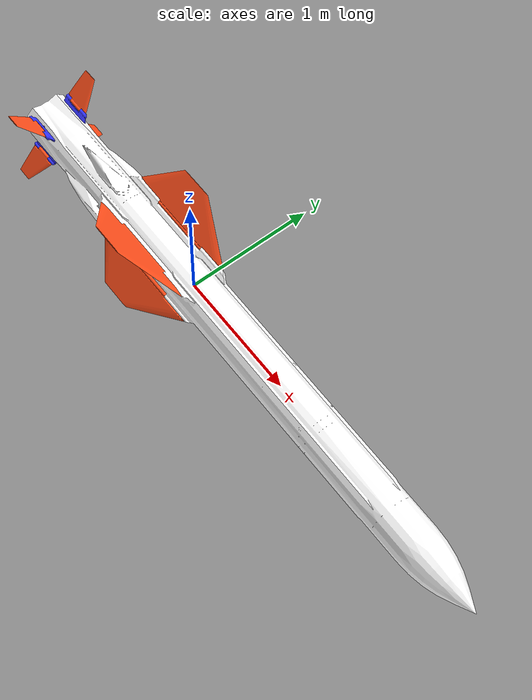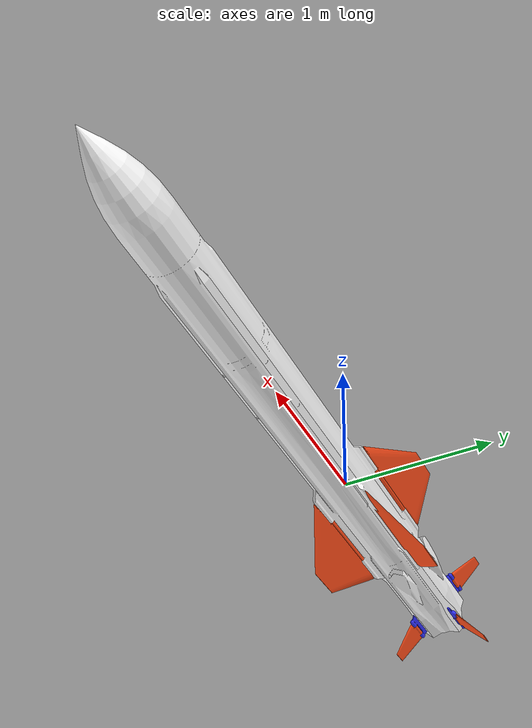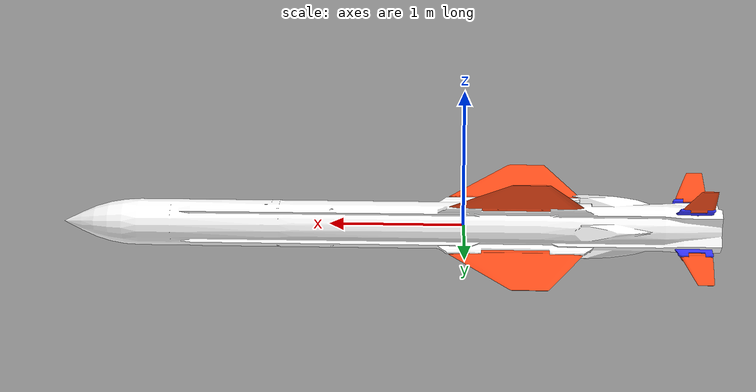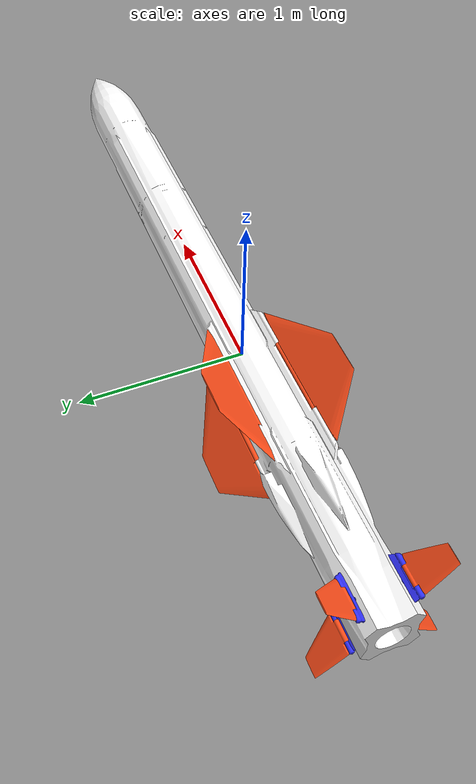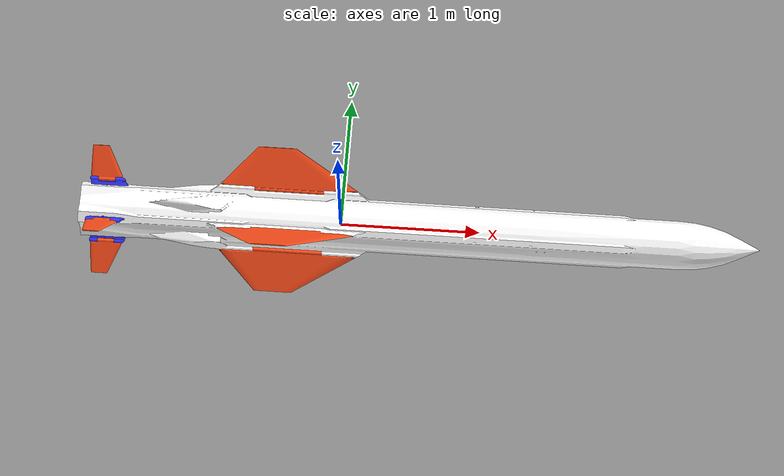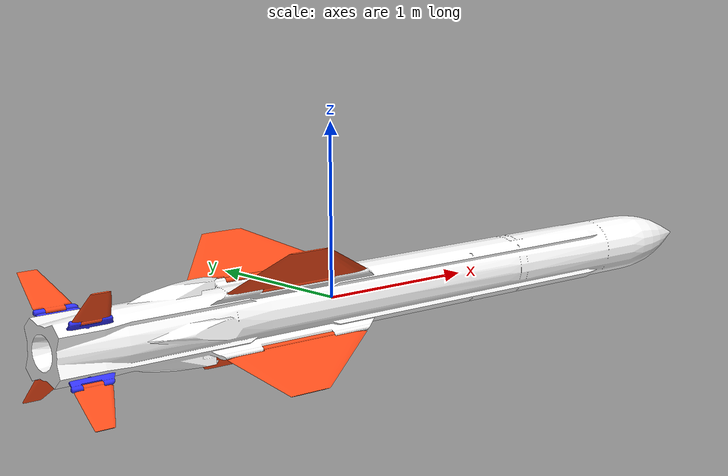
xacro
<?xml version="1.0" ?>
<robot name="model_missile" xmlns:xacro="http://www.ros.org/wiki/xacro">

<xacro:property name="use_booster" value="false"/>
<xacro:property name="use_holder" value="false"/>
<xacro:property name="foldable" value="false"/>
<xacro:property name="deflection" value="true"/>

<xacro:include filename="$(find model_missile_description)/urdf/materials.xacro" />
<xacro:include filename="$(find model_missile_description)/urdf/model_missile.trans" />
<xacro:include filename="$(find model_missile_description)/urdf/model_missile.gazebo" />

<link name="base_link">
  <inertial>
    <origin xyz="-4.5938008952361996e-12 -5.330786024108829e-16 -2.382079374378753e-16" rpy="0 0 0"/>
    <mass value="562.7679612503737"/>
    <inertia ixx="12.078708" iyy="817.09871" izz="817.09871" ixy="0.0" iyz="-0.0" ixz="0.0"/>
  </inertial>
  <visual>
    <origin xyz="0 0 0" rpy="0 0 0"/>
    <geometry>
      <mesh filename="package://model_missile_description/meshes/base_link.stl" scale="0.001 0.001 0.001"/>
    </geometry>
    <material name="white"/>
  </visual>
  <collision>
    <origin xyz="0 0 0" rpy="0 0 0"/>
    <geometry>
      <mesh filename="package://model_missile_description/meshes/base_link.stl" scale="0.001 0.001 0.001"/>
    </geometry>
  </collision>
</link>

<xacro:if value="${use_booster}">
  <link name="Booster_1">
    <inertial>
      <origin xyz="-0.5305587019886722 3.685572621648184e-09 -9.224211236366606e-10" rpy="0 0 0"/>
      <mass value="120.00001114591107"/>
      <inertia ixx="5.768641" iyy="16.618567" izz="16.618567" ixy="-0.0" iyz="-0.0" ixz="0.0"/>
    </inertial>
    <visual>
      <origin xyz="1.880856 -0.0 -0.0" rpy="0 0 0"/>
      <geometry>
        <mesh filename="package://model_missile_description/meshes/Booster_1.stl" scale="0.001 0.001 0.001"/>
      </geometry>
      <material name="grey"/>
    </visual>
    <collision>
      <origin xyz="1.880856 -0.0 -0.0" rpy="0 0 0"/>
      <geometry>
        <mesh filename="package://model_missile_description/meshes/Booster_1.stl" scale="0.001 0.001 0.001"/>
      </geometry>
    </collision>
  </link>
</xacro:if>

<link name="FinHolder_1">
  <inertial>
    <origin xyz="0.011989970177444853 0.024895470365400352 0.02489052657337168" rpy="0 0 0"/>
    <mass value="0.6999999481439694"/>
    <inertia ixx="0.00025" iyy="0.004649" izz="0.004649" ixy="3e-05" iyz="-9.8e-05" ixz="3e-05"/>
  </inertial>
  <visual>
    <origin xyz="1.700844 -0.127279 -0.127279" rpy="0 0 0"/>
    <geometry>
      <mesh filename="package://model_missile_description/meshes/FinHolder_1.stl" scale="0.001 0.001 0.001"/>
    </geometry>
    <material name="blue"/>
  </visual>
  <collision>
    <origin xyz="1.700844 -0.127279 -0.127279" rpy="0 0 0"/>
    <geometry>
      <mesh filename="package://model_missile_description/meshes/FinHolder_1.stl" scale="0.001 0.001 0.001"/>
    </geometry>
  </collision>
</link>

<link name="FinHolder_4">
  <inertial>
    <origin xyz="0.011989970177444853 -0.024890526573368127 0.0248954703654041" rpy="0 0 0"/>
    <mass value="0.6999999481439694"/>
    <inertia ixx="0.00025" iyy="0.004649" izz="0.004649" ixy="-3e-05" iyz="9.8e-05" ixz="3e-05"/>
  </inertial>
  <visual>
    <origin xyz="1.700844 0.127279 -0.127279" rpy="0 0 0"/>
    <geometry>
      <mesh filename="package://model_missile_description/meshes/FinHolder_4.stl" scale="0.001 0.001 0.001"/>
    </geometry>
    <material name="blue"/>
  </visual>
  <collision>
    <origin xyz="1.700844 0.127279 -0.127279" rpy="0 0 0"/>
    <geometry>
      <mesh filename="package://model_missile_description/meshes/FinHolder_4.stl" scale="0.001 0.001 0.001"/>
    </geometry>
  </collision>
</link>

<link name="FinHolder_3">
  <inertial>
    <origin xyz="0.011989970177444853 -0.024895470365400463 -0.02489052657336438" rpy="0 0 0"/>
    <mass value="0.6999999481439694"/>
    <inertia ixx="0.00025" iyy="0.004649" izz="0.004649" ixy="-3e-05" iyz="-9.8e-05" ixz="-3e-05"/>
  </inertial>
  <visual>
    <origin xyz="1.700844 0.127279 0.127279" rpy="0 0 0"/>
    <geometry>
      <mesh filename="package://model_missile_description/meshes/FinHolder_3.stl" scale="0.001 0.001 0.001"/>
    </geometry>
    <material name="blue"/>
  </visual>
  <collision>
    <origin xyz="1.700844 0.127279 0.127279" rpy="0 0 0"/>
    <geometry>
      <mesh filename="package://model_missile_description/meshes/FinHolder_3.stl" scale="0.001 0.001 0.001"/>
    </geometry>
  </collision>
</link>

<link name="FinHolder_2">
  <inertial>
    <origin xyz="0.011989970177444409 0.024890526573368155 -0.024895470365396688" rpy="0 0 0"/>
    <mass value="0.6999999481439694"/>
    <inertia ixx="0.00025" iyy="0.004649" izz="0.004649" ixy="3e-05" iyz="9.8e-05" ixz="-3e-05"/>
  </inertial>
  <visual>
    <origin xyz="1.700844 -0.127279 0.127279" rpy="0 0 0"/>
    <geometry>
      <mesh filename="package://model_missile_description/meshes/FinHolder_2.stl" scale="0.001 0.001 0.001"/>
    </geometry>
    <material name="blue"/>
  </visual>
  <collision>
    <origin xyz="1.700844 -0.127279 0.127279" rpy="0 0 0"/>
    <geometry>
      <mesh filename="package://model_missile_description/meshes/FinHolder_2.stl" scale="0.001 0.001 0.001"/>
    </geometry>
  </collision>
</link>

<link name="Wing1_1">
  <inertial>
    <origin xyz="-0.031208061901909834 0.07128204697290338 0.07128204710602434" rpy="0 0 0"/>
    <mass value="9.299979574219194"/>
    <inertia ixx="0.055746" iyy="0.41744" izz="0.41744" ixy="0.012327" iyz="-0.02758" ixz="0.012327"/>
  </inertial>
  <visual>
    <origin xyz="0.380856 -0.163355 -0.163355" rpy="0 0 0"/>
    <geometry>
      <mesh filename="package://model_missile_description/meshes/Wing1_1.stl" scale="0.001 0.001 0.001"/>
    </geometry>
    <material name="orange"/>
  </visual>
  <collision>
    <origin xyz="0.380856 -0.163355 -0.163355" rpy="0 0 0"/>
    <geometry>
      <mesh filename="package://model_missile_description/meshes/Wing1_1.stl" scale="0.001 0.001 0.001"/>
    </geometry>
  </collision>
</link>

<link name="Wing1_2">
  <inertial>
    <origin xyz="-0.031208061901910722 0.07057494032483622 -0.07057494019171545" rpy="0 0 0"/>
    <mass value="9.299979574219194"/>
    <inertia ixx="0.055746" iyy="0.41744" izz="0.41744" ixy="0.012327" iyz="0.02758" ixz="-0.012327"/>
  </inertial>
  <visual>
    <origin xyz="0.380856 -0.163355 0.163355" rpy="0 0 0"/>
    <geometry>
      <mesh filename="package://model_missile_description/meshes/Wing1_2.stl" scale="0.001 0.001 0.001"/>
    </geometry>
    <material name="orange"/>
  </visual>
  <collision>
    <origin xyz="0.380856 -0.163355 0.163355" rpy="0 0 0"/>
    <geometry>
      <mesh filename="package://model_missile_description/meshes/Wing1_2.stl" scale="0.001 0.001 0.001"/>
    </geometry>
  </collision>
</link>

<link name="Wing1_3">
  <inertial>
    <origin xyz="-0.031208061901910722 -0.07057494019171678 -0.0705749403248346" rpy="0 0 0"/>
    <mass value="9.299979574219194"/>
    <inertia ixx="0.055746" iyy="0.41744" izz="0.41744" ixy="-0.012327" iyz="-0.02758" ixz="-0.012327"/>
  </inertial>
  <visual>
    <origin xyz="0.380856 0.163355 0.163355" rpy="0 0 0"/>
    <geometry>
      <mesh filename="package://model_missile_description/meshes/Wing1_3.stl" scale="0.001 0.001 0.001"/>
    </geometry>
    <material name="orange"/>
  </visual>
  <collision>
    <origin xyz="0.380856 0.163355 0.163355" rpy="0 0 0"/>
    <geometry>
      <mesh filename="package://model_missile_description/meshes/Wing1_3.stl" scale="0.001 0.001 0.001"/>
    </geometry>
  </collision>
</link>

<link name="Wing1_4">
  <inertial>
    <origin xyz="-0.031208061901909945 -0.07057494032483608 0.07057494019171842" rpy="0 0 0"/>
    <mass value="9.299979574219194"/>
    <inertia ixx="0.055746" iyy="0.41744" izz="0.41744" ixy="-0.012327" iyz="0.02758" ixz="0.012327"/>
  </inertial>
  <visual>
    <origin xyz="0.380856 0.163355 -0.163355" rpy="0 0 0"/>
    <geometry>
      <mesh filename="package://model_missile_description/meshes/Wing1_4.stl" scale="0.001 0.001 0.001"/>
    </geometry>
    <material name="orange"/>
  </visual>
  <collision>
    <origin xyz="0.380856 0.163355 -0.163355" rpy="0 0 0"/>
    <geometry>
      <mesh filename="package://model_missile_description/meshes/Wing1_4.stl" scale="0.001 0.001 0.001"/>
    </geometry>
  </collision>
</link>

<link name="Fin_1">
  <inertial>
    <origin xyz="-0.014318251120852166 0.06139665026364291 0.061396650263642966" rpy="0 0 0"/>
    <mass value="1.500000007859579"/>
    <inertia ixx="0.006929" iyy="0.007262" izz="0.007262" ixy="0.000899" iyz="-0.003432" ixz="0.000899"/>
  </inertial>
  <visual>
    <origin xyz="1.700844 -0.16617 -0.16617" rpy="0 0 0"/>
    <geometry>
      <mesh filename="package://model_missile_description/meshes/Fin_1.stl" scale="0.001 0.001 0.001"/>
    </geometry>
    <material name="orange"/>
  </visual>
  <collision>
    <origin xyz="1.700844 -0.16617 -0.16617" rpy="0 0 0"/>
    <geometry>
      <mesh filename="package://model_missile_description/meshes/Fin_1.stl" scale="0.001 0.001 0.001"/>
    </geometry>
  </collision>
</link>

<link name="Fin_2">
  <inertial>
    <origin xyz="-0.01431825112085261 0.06139642160960024 -0.061396878917678394" rpy="0 0 0"/>
    <mass value="1.500000007859579"/>
    <inertia ixx="0.006929" iyy="0.007262" izz="0.007262" ixy="0.000899" iyz="0.003432" ixz="-0.000899"/>
  </inertial>
  <visual>
    <origin xyz="1.700844 -0.166158 0.166182" rpy="0 0 0"/>
    <geometry>
      <mesh filename="package://model_missile_description/meshes/Fin_2.stl" scale="0.001 0.001 0.001"/>
    </geometry>
    <material name="orange"/>
  </visual>
  <collision>
    <origin xyz="1.700844 -0.166158 0.166182" rpy="0 0 0"/>
    <geometry>
      <mesh filename="package://model_missile_description/meshes/Fin_2.stl" scale="0.001 0.001 0.001"/>
    </geometry>
  </collision>
</link>

<link name="Fin_3">
  <inertial>
    <origin xyz="-0.014318251120852166 -0.06139665026364283 -0.06139665026363558" rpy="0 0 0"/>
    <mass value="1.500000007859579"/>
    <inertia ixx="0.006929" iyy="0.007262" izz="0.007262" ixy="-0.000899" iyz="-0.003432" ixz="-0.000899"/>
  </inertial>
  <visual>
    <origin xyz="1.700844 0.16617 0.16617" rpy="0 0 0"/>
    <geometry>
      <mesh filename="package://model_missile_description/meshes/Fin_3.stl" scale="0.001 0.001 0.001"/>
    </geometry>
    <material name="orange"/>
  </visual>
  <collision>
    <origin xyz="1.700844 0.16617 0.16617" rpy="0 0 0"/>
    <geometry>
      <mesh filename="package://model_missile_description/meshes/Fin_3.stl" scale="0.001 0.001 0.001"/>
    </geometry>
  </collision>
</link>

<link name="Fin_4">
  <inertial>
    <origin xyz="-0.014318251120852166 -0.061396650263639274 0.06139665026364652" rpy="0 0 0"/>
    <mass value="1.500000007859579"/>
    <inertia ixx="0.006929" iyy="0.007262" izz="0.007262" ixy="-0.000899" iyz="0.003432" ixz="0.000899"/>
  </inertial>
  <visual>
    <origin xyz="1.700844 0.16617 -0.16617" rpy="0 0 0"/>
    <geometry>
      <mesh filename="package://model_missile_description/meshes/Fin_4.stl" scale="0.001 0.001 0.001"/>
    </geometry>
    <material name="orange"/>
  </visual>
  <collision>
    <origin xyz="1.700844 0.16617 -0.16617" rpy="0 0 0"/>
    <geometry>
      <mesh filename="package://model_missile_description/meshes/Fin_4.stl" scale="0.001 0.001 0.001"/>
    </geometry>
  </collision>
</link>

<xacro:if value="${use_holder}">
  <link name="Holder_1">
    <inertial>
      <origin xyz="-0.19999995584291042 0.025232520282130994 0.02523252028212361" rpy="0 0 0"/>
      <mass value="13.50000107858645"/>
      <inertia ixx="0.184494" iyy="0.864601" izz="0.864601" ixy="-0.0" iyz="0.079825" ixz="-0.0"/>
    </inertial>
    <visual>
      <origin xyz="-1.375615 -0.132493 -0.132493" rpy="0 0 0"/>
      <geometry>
        <mesh filename="package://model_missile_description/meshes/Holder_1.stl" scale="0.001 0.001 0.001"/>
      </geometry>
      <material name="darkgrey"/>
    </visual>
    <collision>
      <origin xyz="-1.375615 -0.132493 -0.132493" rpy="0 0 0"/>
      <geometry>
        <mesh filename="package://model_missile_description/meshes/Holder_1.stl" scale="0.001 0.001 0.001"/>
      </geometry>
    </collision>
  </link>

  <link name="Holder_2">
    <inertial>
      <origin xyz="-0.19999995584291042 -0.02523252028212361 0.025232520282130994" rpy="0 0 0"/>
      <mass value="13.50000107858645"/>
      <inertia ixx="0.184494" iyy="0.864601" izz="0.864601" ixy="0.0" iyz="-0.079825" ixz="-0.0"/>
    </inertial>
    <visual>
      <origin xyz="-1.375615 0.132493 -0.132493" rpy="0 0 0"/>
      <geometry>
        <mesh filename="package://model_missile_description/meshes/Holder_2.stl" scale="0.001 0.001 0.001"/>
      </geometry>
      <material name="darkgrey"/>
    </visual>
    <collision>
      <origin xyz="-1.375615 0.132493 -0.132493" rpy="0 0 0"/>
      <geometry>
        <mesh filename="package://model_missile_description/meshes/Holder_2.stl" scale="0.001 0.001 0.001"/>
      </geometry>
    </collision>
  </link>

  <link name="Holder_3">
    <inertial>
      <origin xyz="-0.19999995584291042 -0.025232520282130994 -0.025232520282123555" rpy="0 0 0"/>
      <mass value="13.50000107858645"/>
      <inertia ixx="0.184494" iyy="0.864601" izz="0.864601" ixy="0.0" iyz="0.079825" ixz="0.0"/>
    </inertial>
    <visual>
      <origin xyz="-1.375615 0.132493 0.132493" rpy="0 0 0"/>
      <geometry>
        <mesh filename="package://model_missile_description/meshes/Holder_3.stl" scale="0.001 0.001 0.001"/>
      </geometry>
      <material name="darkgrey"/>
    </visual>
    <collision>
      <origin xyz="-1.375615 0.132493 0.132493" rpy="0 0 0"/>
      <geometry>
        <mesh filename="package://model_missile_description/meshes/Holder_3.stl" scale="0.001 0.001 0.001"/>
      </geometry>
    </collision>
  </link>

  <link name="Holder_4">
    <inertial>
      <origin xyz="-0.19999995584291042 0.025232520282123555 -0.025232520282130994" rpy="0 0 0"/>
      <mass value="13.50000107858645"/>
      <inertia ixx="0.184494" iyy="0.864601" izz="0.864601" ixy="-0.0" iyz="-0.079825" ixz="0.0"/>
    </inertial>
    <visual>
      <origin xyz="-1.375615 -0.132493 0.132493" rpy="0 0 0"/>
      <geometry>
        <mesh filename="package://model_missile_description/meshes/Holder_4.stl" scale="0.001 0.001 0.001"/>
      </geometry>
      <material name="darkgrey"/>
    </visual>
    <collision>
      <origin xyz="-1.375615 -0.132493 0.132493" rpy="0 0 0"/>
      <geometry>
        <mesh filename="package://model_missile_description/meshes/Holder_4.stl" scale="0.001 0.001 0.001"/>
      </geometry>
    </collision>
  </link>
</xacro:if>

<xacro:if value="${use_booster}">
  <joint name="booster_fixing" type="fixed">
    <origin xyz="-1.880856 0.0 0.0" rpy="0 0 0"/>
    <parent link="base_link"/>
    <child link="Booster_1"/>
  </joint>
</xacro:if>

<xacro:if value="${deflection}">
  <joint name="fins_rev1" type="revolute">
    <origin xyz="-1.700844 0.127279 0.127279" rpy="0 0 0"/>
    <parent link="base_link"/>
    <child link="FinHolder_1"/>
    <axis xyz="-0.0 0.707107 0.707107"/>
    <limit upper="0.349066" lower="-0.349066" effort="90000000" velocity="90000000"/>
    <dynamics damping="7"/>
  </joint>

  <joint name="fins_rev2" type="revolute">
    <origin xyz="-1.700844 0.127279 -0.127279" rpy="0 0 0"/>
    <parent link="base_link"/>
    <child link="FinHolder_2"/>
    <axis xyz="-0.0 0.707107 -0.707107"/>
    <limit upper="0.349066" lower="-0.349066" effort="90000000" velocity="90000000"/>
    <dynamics damping="7"/>
  </joint>

  <joint name="fins_rev3" type="revolute">
    <origin xyz="-1.700844 -0.127279 -0.127279" rpy="0 0 0"/>
    <parent link="base_link"/>
    <child link="FinHolder_3"/>
    <axis xyz="-0.0 -0.707107 -0.707107"/>
    <limit upper="0.349066" lower="-0.349066" effort="90000000" velocity="90000000"/>
    <dynamics damping="7"/>
  </joint>

  <joint name="fins_rev4" type="revolute">
    <origin xyz="-1.700844 -0.127279 0.127279" rpy="0 0 0"/>
    <parent link="base_link"/>
    <child link="FinHolder_4"/>
    <axis xyz="-0.0 -0.707107 0.707107"/>
    <limit upper="0.349066" lower="-0.349066" effort="90000000" velocity="90000000"/>
    <dynamics damping="7"/>
  </joint>
</xacro:if>

<xacro:unless value="${deflection}">
  <joint name="fins_rev1" type="fixed">
    <origin xyz="-1.700844 0.127279 0.127279" rpy="0 0 0"/>
    <parent link="base_link"/>
    <child link="FinHolder_1"/>
  </joint>

  <joint name="fins_rev2" type="fixed">
    <origin xyz="-1.700844 0.127279 -0.127279" rpy="0 0 0"/>
    <parent link="base_link"/>
    <child link="FinHolder_2"/>
  </joint>

  <joint name="fins_rev3" type="fixed">
    <origin xyz="-1.700844 -0.127279 -0.127279" rpy="0 0 0"/>
    <parent link="base_link"/>
    <child link="FinHolder_3"/>
  </joint>

  <joint name="fins_rev4" type="fixed">
    <origin xyz="-1.700844 -0.127279 0.127279" rpy="0 0 0"/>
    <parent link="base_link"/>
    <child link="FinHolder_4"/>
  </joint>
</xacro:unless>

<xacro:if value="${foldable}">
  <joint name="wings_fold1" type="revolute">
    <origin xyz="-0.380856 0.163355 0.163355" rpy="0 0 0"/>
    <parent link="base_link"/>
    <child link="Wing1_1"/>
    <axis xyz="1.0 -0.0 -0.0"/>
    <limit upper="2.146755" lower="0.0" effort="100" velocity="100"/>
  </joint>

  <joint name="wings_fold2" type="revolute">
    <origin xyz="-0.380856 0.163355 -0.163355" rpy="0 0 0"/>
    <parent link="base_link"/>
    <child link="Wing1_2"/>
    <axis xyz="1.0 0.0 -0.0"/>
    <limit upper="2.146755" lower="0.0" effort="100" velocity="100"/>
  </joint>

  <joint name="wings_fold3" type="revolute">
    <origin xyz="-0.380856 -0.163355 -0.163355" rpy="0 0 0"/>
    <parent link="base_link"/>
    <child link="Wing1_3"/>
    <axis xyz="1.0 0.0 -0.0"/>
    <limit upper="2.146755" lower="0.0" effort="100" velocity="100"/>
  </joint>

  <joint name="wings_fold4" type="revolute">
    <origin xyz="-0.380856 -0.163355 0.163355" rpy="0 0 0"/>
    <parent link="base_link"/>
    <child link="Wing1_4"/>
    <axis xyz="1.0 -0.0 -0.0"/>
    <limit upper="2.146755" lower="0.0" effort="100" velocity="100"/>
  </joint>

  <joint name="fin_fold1" type="revolute">
    <origin xyz="0.0 0.038891 0.038891" rpy="0 0 0"/>
    <parent link="FinHolder_1"/>
    <child link="Fin_1"/>
    <axis xyz="1.0 0.0 0.0"/>
    <limit upper="2.146755" lower="0.0" effort="100" velocity="100"/>
  </joint>

  <joint name="fin_fold2" type="revolute">
    <origin xyz="0.0 0.038879 -0.038903" rpy="0 0 0"/>
    <parent link="FinHolder_2"/>
    <child link="Fin_2"/>
    <axis xyz="1.0 0.0 -0.0"/>
    <limit upper="2.146755" lower="0.0" effort="100" velocity="100"/>
  </joint>

  <joint name="fin_fold3" type="revolute">
    <origin xyz="0.0 -0.038891 -0.038891" rpy="0 0 0"/>
    <parent link="FinHolder_3"/>
    <child link="Fin_3"/>
    <axis xyz="1.0 -0.0 -0.0"/>
    <limit upper="2.146755" lower="0.0" effort="100" velocity="100"/>
  </joint>

  <joint name="fin_fold4" type="revolute">
    <origin xyz="0.0 -0.038891 0.038891" rpy="0 0 0"/>
    <parent link="FinHolder_4"/>
    <child link="Fin_4"/>
    <axis xyz="1.0 -0.0 0.0"/>
    <limit upper="2.146755" lower="0.0" effort="100" velocity="100"/>
  </joint>
</xacro:if>

<xacro:unless value="${foldable}">
    <joint name="wings_fold1" type="fixed">
      <origin xyz="-0.380856 0.163355 0.163355" rpy="0 0 0"/>
      <parent link="base_link"/>
      <child link="Wing1_1"/>
    </joint>

    <joint name="wings_fold2" type="fixed">
      <origin xyz="-0.380856 0.163355 -0.163355" rpy="0 0 0"/>
      <parent link="base_link"/>
      <child link="Wing1_2"/>
    </joint>

    <joint name="wings_fold3" type="fixed">
      <origin xyz="-0.380856 -0.163355 -0.163355" rpy="0 0 0"/>
      <parent link="base_link"/>
      <child link="Wing1_3"/>
    </joint>

    <joint name="wings_fold4" type="fixed">
      <origin xyz="-0.380856 -0.163355 0.163355" rpy="0 0 0"/>
      <parent link="base_link"/>
      <child link="Wing1_4"/>
    </joint>

    <joint name="fin_fold1" type="fixed">
      <origin xyz="0.0 0.038891 0.038891" rpy="0 0 0"/>
      <parent link="FinHolder_1"/>
      <child link="Fin_1"/>
    </joint>

    <joint name="fin_fold2" type="fixed">
      <origin xyz="0.0 0.038879 -0.038903" rpy="0 0 0"/>
      <parent link="FinHolder_2"/>
      <child link="Fin_2"/>
    </joint>

    <joint name="fin_fold3" type="fixed">
      <origin xyz="0.0 -0.038891 -0.038891" rpy="0 0 0"/>
      <parent link="FinHolder_3"/>
      <child link="Fin_3"/>
    </joint>

    <joint name="fin_fold4" type="fixed">
      <origin xyz="0.0 -0.038891 0.038891" rpy="0 0 0"/>
      <parent link="FinHolder_4"/>
      <child link="Fin_4"/>
    </joint>
</xacro:unless>

<xacro:if value="${use_holder}">
  <joint name="HolderJoint1" type="fixed">
    <origin xyz="1.375615 0.132493 0.132493" rpy="0 0 0"/>
    <parent link="base_link"/>
    <child link="Holder_1"/>
  </joint>

  <joint name="HolderJoint2" type="fixed">
    <origin xyz="1.375615 -0.132493 0.132493" rpy="0 0 0"/>
    <parent link="base_link"/>
    <child link="Holder_2"/>
  </joint>

  <joint name="HolderJoint3" type="fixed">
    <origin xyz="1.375615 -0.132493 -0.132493" rpy="0 0 0"/>
    <parent link="base_link"/>
    <child link="Holder_3"/>
  </joint>

  <joint name="HolderJoint4" type="fixed">
    <origin xyz="1.375615 0.132493 -0.132493" rpy="0 0 0"/>
    <parent link="base_link"/>
    <child link="Holder_4"/>
  </joint>
</xacro:if>

</robot>

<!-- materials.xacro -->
<robot name="model_missile" xmlns:xacro="http://www.ros.org/wiki/xacro" >

  <material name="grey">
    <color rgba="${211/256} ${211/256} ${211/256} 1.0"/>
  </material>

  <material name="darkgrey">
    <color rgba="${47/255} ${79/255} ${79/255} 1.000"/>
  </material>

  <material name="silver">
    <color rgba="0.700 0.700 0.700 1.000"/>
  </material>

  <material name="white">
    <color rgba="1 1 1 1" />
  </material>

  <material name="orange">
    <color rgba="1 0.3 0.1 1"/>
  </material>

  <material name="blue">
    <color rgba="0.2 0.2 1 1"/>
  </material>

  <material name="red">
    <color rgba="0.8 0 0 1"/>
  </material>

  <material name="green">
    <color rgba="0.0 1 0.0 1"/>
  </material>

  <material name="black">
    <color rgba="0 0 0 1"/>
  </material>

</robot>
